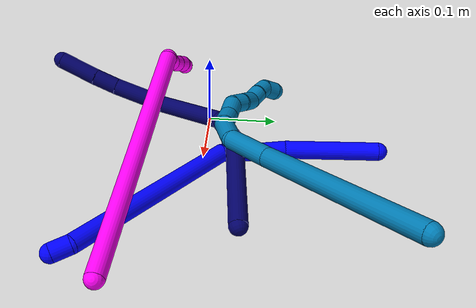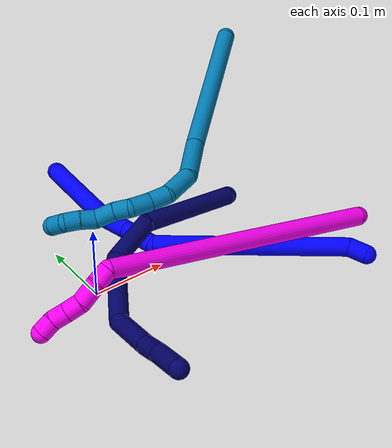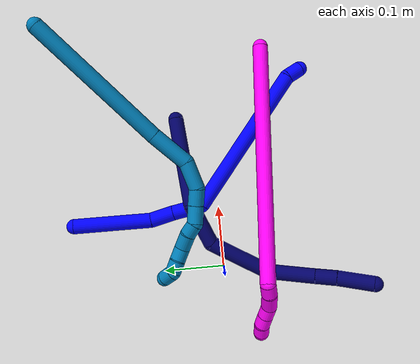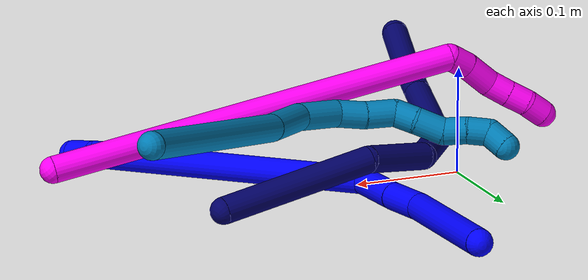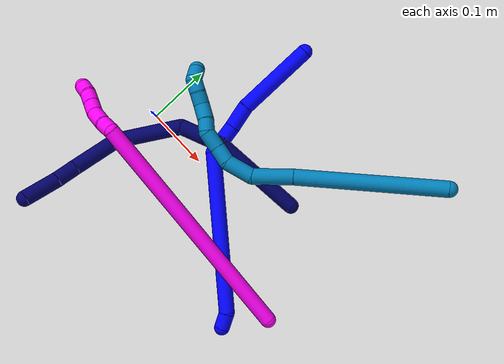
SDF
<sdf version="1.7">
 <world name="default">
  <model name="bin">
   <static>1</static>
   <link name="bottom">
    <collision name="collision-bottom">
     <pose>0 0 -0.01 0 -0 0</pose>
     <geometry><box><size>0.8 0.6 0.02</size></box></geometry>
     <surface>
      <friction><ode><mu>100</mu><mu2>100</mu2></ode></friction>
      <contact><collide_bitmask>65535</collide_bitmask></contact>
     </surface>
    </collision>
   </link>
   <link name="west_wall">
    <collision name="collision-west_wall">
     <pose>-0.41 0 0.1 0 -0 0</pose>
     <geometry><box><size>0.02 0.6 0.2</size></box></geometry>
     <surface>
      <friction><ode><mu>100</mu><mu2>100</mu2></ode></friction>
      <contact><collide_bitmask>65535</collide_bitmask></contact>
     </surface>
    </collision>
   </link>
   <link name="east_wall">
    <collision name="collision-east_wall">
     <pose>0.41 0 0.1 0 -0 0</pose>
     <geometry><box><size>0.02 0.6 0.2</size></box></geometry>
     <surface>
      <friction><ode><mu>100</mu><mu2>100</mu2></ode></friction>
      <contact><collide_bitmask>65535</collide_bitmask></contact>
     </surface>
    </collision>
   </link>
   <link name="south_wall">
    <collision name="collision-south_wall">
     <pose>0 -0.31 0.1 0 -0 0</pose>
     <geometry><box><size>0.8 0.02 0.2</size></box></geometry>
     <surface>
      <friction><ode><mu>100</mu><mu2>100</mu2></ode></friction>
      <contact><collide_bitmask>65535</collide_bitmask></contact>
     </surface>
    </collision>
   </link>
   <link name="north_wall">
    <collision name="collision-north_wall">
     <pose>0 0.31 0.1 0 -0 0</pose>
     <geometry><box><size>0.8 0.02 0.2</size></box></geometry>
     <surface>
      <friction><ode><mu>100</mu><mu2>100</mu2></ode></friction>
      <contact><collide_bitmask>65535</collide_bitmask></contact>
     </surface>
    </collision>
   </link>
  </model>
  <model name="1">
   <static>0</static>
   <link name="1">
    <collision name="collision-cylinder-e_1_1_4">
     <pose>-0.000139 -0.010173 -0.063301 2.98225 -0.002169 -0.027163</pose>
     <geometry><cylinder><radius>0.0125</radius><length>0.128226</length></cylinder></geometry>
     <surface>
      <friction><ode><mu>1.16</mu><mu2>1.16</mu2><slip1>0</slip1><slip2>0</slip2></ode></friction>
      <contact><ode><kp>1e+06</kp><kd>1</kd><max_vel>0</max_vel><min_depth>0.001</min_depth></ode></contact>
     </surface>
    </collision>
    <visual name="visual-cylinder-e_1_1_4">
     <pose>-0.000139 -0.010173 -0.063301 2.98225 -0.002169 -0.027163</pose>
     <geometry><cylinder><radius>0.0125</radius><length>0.128226</length></cylinder></geometry>
     <material><ambient>0 0 1 1</ambient></material>
    </visual>
    <collision name="collision-cylinder-e_2_4_5">
     <pose>-0.000852 -0.027991 -0.144532 2.73855 -0.029453 -0.143932</pose>
     <geometry><cylinder><radius>0.0125</radius><length>0.039002</length></cylinder></geometry>
     <surface>
      <friction><ode><mu>1.16</mu><mu2>1.16</mu2><slip1>0</slip1><slip2>0</slip2></ode></friction>
      <contact><ode><kp>1e+06</kp><kd>1</kd><max_vel>0</max_vel><min_depth>0.001</min_depth></ode></contact>
     </surface>
    </collision>
    <visual name="visual-cylinder-e_2_4_5">
     <pose>-0.000852 -0.027991 -0.144532 2.73855 -0.029453 -0.143932</pose>
     <geometry><cylinder><radius>0.0125</radius><length>0.039002</length></cylinder></geometry>
     <material><ambient>0 0 1 1</ambient></material>
    </visual>
    <collision name="collision-cylinder-e_3_5_6">
     <pose>-0.00309 -0.044097 -0.185906 2.79524 -0.066637 -0.376564</pose>
     <geometry><cylinder><radius>0.0125</radius><length>0.049957</length></cylinder></geometry>
     <surface>
      <friction><ode><mu>1.16</mu><mu2>1.16</mu2><slip1>0</slip1><slip2>0</slip2></ode></friction>
      <contact><ode><kp>1e+06</kp><kd>1</kd><max_vel>0</max_vel><min_depth>0.001</min_depth></ode></contact>
     </surface>
    </collision>
    <visual name="visual-cylinder-e_3_5_6">
     <pose>-0.00309 -0.044097 -0.185906 2.79524 -0.066637 -0.376564</pose>
     <geometry><cylinder><radius>0.0125</radius><length>0.049957</length></cylinder></geometry>
     <material><ambient>0 0 1 1</ambient></material>
    </visual>
    <collision name="collision-cylinder-e_4_6_7">
     <pose>-0.002627 -0.165091 -0.271459 2.07512 0.01654 0.02802</pose>
     <geometry><cylinder><radius>0.0125</radius><length>0.257105</length></cylinder></geometry>
     <surface>
      <friction><ode><mu>1.16</mu><mu2>1.16</mu2><slip1>0</slip1><slip2>0</slip2></ode></friction>
      <contact><ode><kp>1e+06</kp><kd>1</kd><max_vel>0</max_vel><min_depth>0.001</min_depth></ode></contact>
     </surface>
    </collision>
    <visual name="visual-cylinder-e_4_6_7">
     <pose>-0.002627 -0.165091 -0.271459 2.07512 0.01654 0.02802</pose>
     <geometry><cylinder><radius>0.0125</radius><length>0.257105</length></cylinder></geometry>
     <material><ambient>0 0 1 1</ambient></material>
    </visual>
    <collision name="collision-cylinder-e_5_7_2">
     <pose>0.001659 -0.285325 -0.343632 2.48835 0.16885 0.489609</pose>
     <geometry><cylinder><radius>0.0125</radius><length>0.025709</length></cylinder></geometry>
     <surface>
      <friction><ode><mu>1.16</mu><mu2>1.16</mu2><slip1>0</slip1><slip2>0</slip2></ode></friction>
      <contact><ode><kp>1e+06</kp><kd>1</kd><max_vel>0</max_vel><min_depth>0.001</min_depth></ode></contact>
     </surface>
    </collision>
    <visual name="visual-cylinder-e_5_7_2">
     <pose>0.001659 -0.285325 -0.343632 2.48835 0.16885 0.489609</pose>
     <geometry><cylinder><radius>0.0125</radius><length>0.025709</length></cylinder></geometry>
     <material><ambient>0 0 1 1</ambient></material>
    </visual>
    <collision name="collision-sphere-2">
     <pose>0.003819 -0.293026 -0.353694 0 -0 0</pose>
     <geometry><sphere><radius>0.0125</radius></sphere></geometry>
     <surface>
      <friction><ode><mu>1.16</mu><mu2>1.16</mu2><slip1>0</slip1><slip2>0</slip2></ode></friction>
      <contact><ode><kp>1e+06</kp><kd>1</kd><max_vel>0</max_vel><min_depth>0.001</min_depth></ode></contact>
     </surface>
    </collision>
    <visual name="visual-sphere-2">
     <pose>0.003819 -0.293026 -0.353694 0 -0 0</pose>
     <geometry><sphere><radius>0.0125</radius></sphere></geometry>
     <material><ambient>0 0 1 1</ambient></material>
    </visual>
    <collision name="collision-sphere-7">
     <pose>-0.000501 -0.277624 -0.333569 0 -0 0</pose>
     <geometry><sphere><radius>0.0125</radius></sphere></geometry>
     <surface>
      <friction><ode><mu>1.16</mu><mu2>1.16</mu2><slip1>0</slip1><slip2>0</slip2></ode></friction>
      <contact><ode><kp>1e+06</kp><kd>1</kd><max_vel>0</max_vel><min_depth>0.001</min_depth></ode></contact>
     </surface>
    </collision>
    <visual name="visual-sphere-7">
     <pose>-0.000501 -0.277624 -0.333569 0 -0 0</pose>
     <geometry><sphere><radius>0.0125</radius></sphere></geometry>
     <material><ambient>0 0 1 1</ambient></material>
    </visual>
    <collision name="collision-sphere-6">
     <pose>-0.004753 -0.052558 -0.20935 0 -0 0</pose>
     <geometry><sphere><radius>0.0125</radius></sphere></geometry>
     <surface>
      <friction><ode><mu>1.16</mu><mu2>1.16</mu2><slip1>0</slip1><slip2>0</slip2></ode></friction>
      <contact><ode><kp>1e+06</kp><kd>1</kd><max_vel>0</max_vel><min_depth>0.001</min_depth></ode></contact>
     </surface>
    </collision>
    <visual name="visual-sphere-6">
     <pose>-0.004753 -0.052558 -0.20935 0 -0 0</pose>
     <geometry><sphere><radius>0.0125</radius></sphere></geometry>
     <material><ambient>0 0 1 1</ambient></material>
    </visual>
    <collision name="collision-sphere-5">
     <pose>-0.001427 -0.035636 -0.162463 0 -0 0</pose>
     <geometry><sphere><radius>0.0125</radius></sphere></geometry>
     <surface>
      <friction><ode><mu>1.16</mu><mu2>1.16</mu2><slip1>0</slip1><slip2>0</slip2></ode></friction>
      <contact><ode><kp>1e+06</kp><kd>1</kd><max_vel>0</max_vel><min_depth>0.001</min_depth></ode></contact>
     </surface>
    </collision>
    <visual name="visual-sphere-5">
     <pose>-0.001427 -0.035636 -0.162463 0 -0 0</pose>
     <geometry><sphere><radius>0.0125</radius></sphere></geometry>
     <material><ambient>0 0 1 1</ambient></material>
    </visual>
    <collision name="collision-sphere-1">
     <geometry><sphere><radius>0.0125</radius></sphere></geometry>
     <surface>
      <friction><ode><mu>1.16</mu><mu2>1.16</mu2><slip1>0</slip1><slip2>0</slip2></ode></friction>
      <contact><ode><kp>1e+06</kp><kd>1</kd><max_vel>0</max_vel><min_depth>0.001</min_depth></ode></contact>
     </surface>
    </collision>
    <visual name="visual-sphere-1">
     <geometry><sphere><radius>0.0125</radius></sphere></geometry>
     <material><ambient>0 0 1 1</ambient></material>
    </visual>
    <collision name="collision-sphere-4">
     <pose>-0.000278 -0.020346 -0.126602 0 -0 0</pose>
     <geometry><sphere><radius>0.0125</radius></sphere></geometry>
     <surface>
      <friction><ode><mu>1.16</mu><mu2>1.16</mu2><slip1>0</slip1><slip2>0</slip2></ode></friction>
      <contact><ode><kp>1e+06</kp><kd>1</kd><max_vel>0</max_vel><min_depth>0.001</min_depth></ode></contact>
     </surface>
    </collision>
    <visual name="visual-sphere-4">
     <pose>-0.000278 -0.020346 -0.126602 0 -0 0</pose>
     <geometry><sphere><radius>0.0125</radius></sphere></geometry>
     <material><ambient>0 0 1 1</ambient></material>
    </visual>
    <inertial>
     <pose>-0.001676 -0.10876 -0.203339 0 -0 0</pose>
     <mass>0.5</mass>
     <inertia>
      <ixx>0.001657</ixx>
      <ixy>0</ixy>
      <ixz>0</ixz>
      <iyy>-0.000877</iyy>
      <iyz>0</iyz>
      <izz>0.001235</izz>
     </inertia>
    </inertial>
   </link>
   <pose>0.090035 0.242398 0.017252 -0.829258 1.48507 0.571272</pose>
  </model>
  <model name="7">
   <static>0</static>
   <link name="7">
    <collision name="collision-cylinder-e_1_1_4">
     <pose>0.010843 -0.022826 -0.069794 2.82551 0.146597 0.863517</pose>
     <geometry><cylinder><radius>0.0125</radius><length>0.148455</length></cylinder></geometry>
     <surface>
      <friction><ode><mu>1.16</mu><mu2>1.16</mu2><slip1>0</slip1><slip2>0</slip2></ode></friction>
      <contact><ode><kp>1e+06</kp><kd>1</kd><max_vel>0</max_vel><min_depth>0.001</min_depth></ode></contact>
     </surface>
    </collision>
    <visual name="visual-cylinder-e_1_1_4">
     <pose>0.010843 -0.022826 -0.069794 2.82551 0.146597 0.863517</pose>
     <geometry><cylinder><radius>0.0125</radius><length>0.148455</length></cylinder></geometry>
     <material><ambient>0.003922 0 0.403922 1</ambient></material>
    </visual>
    <collision name="collision-cylinder-e_2_4_5">
     <pose>0.012392 -0.062289 -0.169868 2.63917 -0.262762 -0.951007</pose>
     <geometry><cylinder><radius>0.0125</radius><length>0.071557</length></cylinder></geometry>
     <surface>
      <friction><ode><mu>1.16</mu><mu2>1.16</mu2><slip1>0</slip1><slip2>0</slip2></ode></friction>
      <contact><ode><kp>1e+06</kp><kd>1</kd><max_vel>0</max_vel><min_depth>0.001</min_depth></ode></contact>
     </surface>
    </collision>
    <visual name="visual-cylinder-e_2_4_5">
     <pose>0.012392 -0.062289 -0.169868 2.63917 -0.262762 -0.951007</pose>
     <geometry><cylinder><radius>0.0125</radius><length>0.071557</length></cylinder></geometry>
     <material><ambient>0.003922 0 0.403922 1</ambient></material>
    </visual>
    <collision name="collision-cylinder-e_3_5_6">
     <pose>-0.035527 -0.08369 -0.23737 3.01431 -0.799837 -2.84231</pose>
     <geometry><cylinder><radius>0.0125</radius><length>0.107704</length></cylinder></geometry>
     <surface>
      <friction><ode><mu>1.16</mu><mu2>1.16</mu2><slip1>0</slip1><slip2>0</slip2></ode></friction>
      <contact><ode><kp>1e+06</kp><kd>1</kd><max_vel>0</max_vel><min_depth>0.001</min_depth></ode></contact>
     </surface>
    </collision>
    <visual name="visual-cylinder-e_3_5_6">
     <pose>-0.035527 -0.08369 -0.23737 3.01431 -0.799837 -2.84231</pose>
     <geometry><cylinder><radius>0.0125</radius><length>0.107704</length></cylinder></geometry>
     <material><ambient>0.003922 0 0.403922 1</ambient></material>
    </visual>
    <collision name="collision-cylinder-e_4_6_7">
     <pose>-0.101497 -0.070099 -0.296443 -2.44293 -0.764068 1.66863</pose>
     <geometry><cylinder><radius>0.0125</radius><length>0.079048</length></cylinder></geometry>
     <surface>
      <friction><ode><mu>1.16</mu><mu2>1.16</mu2><slip1>0</slip1><slip2>0</slip2></ode></friction>
      <contact><ode><kp>1e+06</kp><kd>1</kd><max_vel>0</max_vel><min_depth>0.001</min_depth></ode></contact>
     </surface>
    </collision>
    <visual name="visual-cylinder-e_4_6_7">
     <pose>-0.101497 -0.070099 -0.296443 -2.44293 -0.764068 1.66863</pose>
     <geometry><cylinder><radius>0.0125</radius><length>0.079048</length></cylinder></geometry>
     <material><ambient>0.003922 0 0.403922 1</ambient></material>
    </visual>
    <collision name="collision-cylinder-e_5_7_8">
     <pose>-0.140068 -0.042146 -0.328045 -2.36411 -0.687089 1.43585</pose>
     <geometry><cylinder><radius>0.0125</radius><length>0.035397</length></cylinder></geometry>
     <surface>
      <friction><ode><mu>1.16</mu><mu2>1.16</mu2><slip1>0</slip1><slip2>0</slip2></ode></friction>
      <contact><ode><kp>1e+06</kp><kd>1</kd><max_vel>0</max_vel><min_depth>0.001</min_depth></ode></contact>
     </surface>
    </collision>
    <visual name="visual-cylinder-e_5_7_8">
     <pose>-0.140068 -0.042146 -0.328045 -2.36411 -0.687089 1.43585</pose>
     <geometry><cylinder><radius>0.0125</radius><length>0.035397</length></cylinder></geometry>
     <material><ambient>0.003922 0 0.403922 1</ambient></material>
    </visual>
    <collision name="collision-cylinder-e_6_8_2">
     <pose>-0.168942 -0.017737 -0.355276 -2.43868 -0.656381 1.4968</pose>
     <geometry><cylinder><radius>0.0125</radius><length>0.05784</length></cylinder></geometry>
     <surface>
      <friction><ode><mu>1.16</mu><mu2>1.16</mu2><slip1>0</slip1><slip2>0</slip2></ode></friction>
      <contact><ode><kp>1e+06</kp><kd>1</kd><max_vel>0</max_vel><min_depth>0.001</min_depth></ode></contact>
     </surface>
    </collision>
    <visual name="visual-cylinder-e_6_8_2">
     <pose>-0.168942 -0.017737 -0.355276 -2.43868 -0.656381 1.4968</pose>
     <geometry><cylinder><radius>0.0125</radius><length>0.05784</length></cylinder></geometry>
     <material><ambient>0.003922 0 0.403922 1</ambient></material>
    </visual>
    <collision name="collision-sphere-2">
     <pose>-0.186591 -0.002927 -0.372756 0 -0 0</pose>
     <geometry><sphere><radius>0.0125</radius></sphere></geometry>
     <surface>
      <friction><ode><mu>1.16</mu><mu2>1.16</mu2><slip1>0</slip1><slip2>0</slip2></ode></friction>
      <contact><ode><kp>1e+06</kp><kd>1</kd><max_vel>0</max_vel><min_depth>0.001</min_depth></ode></contact>
     </surface>
    </collision>
    <visual name="visual-sphere-2">
     <pose>-0.186591 -0.002927 -0.372756 0 -0 0</pose>
     <geometry><sphere><radius>0.0125</radius></sphere></geometry>
     <material><ambient>0.003922 0 0.403922 1</ambient></material>
    </visual>
    <collision name="collision-sphere-4">
     <pose>0.021685 -0.045652 -0.139587 0 -0 0</pose>
     <geometry><sphere><radius>0.0125</radius></sphere></geometry>
     <surface>
      <friction><ode><mu>1.16</mu><mu2>1.16</mu2><slip1>0</slip1><slip2>0</slip2></ode></friction>
      <contact><ode><kp>1e+06</kp><kd>1</kd><max_vel>0</max_vel><min_depth>0.001</min_depth></ode></contact>
     </surface>
    </collision>
    <visual name="visual-sphere-4">
     <pose>0.021685 -0.045652 -0.139587 0 -0 0</pose>
     <geometry><sphere><radius>0.0125</radius></sphere></geometry>
     <material><ambient>0.003922 0 0.403922 1</ambient></material>
    </visual>
    <collision name="collision-sphere-1">
     <geometry><sphere><radius>0.0125</radius></sphere></geometry>
     <surface>
      <friction><ode><mu>1.16</mu><mu2>1.16</mu2><slip1>0</slip1><slip2>0</slip2></ode></friction>
      <contact><ode><kp>1e+06</kp><kd>1</kd><max_vel>0</max_vel><min_depth>0.001</min_depth></ode></contact>
     </surface>
    </collision>
    <visual name="visual-sphere-1">
     <geometry><sphere><radius>0.0125</radius></sphere></geometry>
     <material><ambient>0.003922 0 0.403922 1</ambient></material>
    </visual>
    <collision name="collision-sphere-8">
     <pose>-0.151294 -0.032547 -0.337797 0 -0 0</pose>
     <geometry><sphere><radius>0.0125</radius></sphere></geometry>
     <surface>
      <friction><ode><mu>1.16</mu><mu2>1.16</mu2><slip1>0</slip1><slip2>0</slip2></ode></friction>
      <contact><ode><kp>1e+06</kp><kd>1</kd><max_vel>0</max_vel><min_depth>0.001</min_depth></ode></contact>
     </surface>
    </collision>
    <visual name="visual-sphere-8">
     <pose>-0.151294 -0.032547 -0.337797 0 -0 0</pose>
     <geometry><sphere><radius>0.0125</radius></sphere></geometry>
     <material><ambient>0.003922 0 0.403922 1</ambient></material>
    </visual>
    <collision name="collision-sphere-5">
     <pose>0.003098 -0.078927 -0.200148 0 -0 0</pose>
     <geometry><sphere><radius>0.0125</radius></sphere></geometry>
     <surface>
      <friction><ode><mu>1.16</mu><mu2>1.16</mu2><slip1>0</slip1><slip2>0</slip2></ode></friction>
      <contact><ode><kp>1e+06</kp><kd>1</kd><max_vel>0</max_vel><min_depth>0.001</min_depth></ode></contact>
     </surface>
    </collision>
    <visual name="visual-sphere-5">
     <pose>0.003098 -0.078927 -0.200148 0 -0 0</pose>
     <geometry><sphere><radius>0.0125</radius></sphere></geometry>
     <material><ambient>0.003922 0 0.403922 1</ambient></material>
    </visual>
    <collision name="collision-sphere-6">
     <pose>-0.074151 -0.088454 -0.274591 0 -0 0</pose>
     <geometry><sphere><radius>0.0125</radius></sphere></geometry>
     <surface>
      <friction><ode><mu>1.16</mu><mu2>1.16</mu2><slip1>0</slip1><slip2>0</slip2></ode></friction>
      <contact><ode><kp>1e+06</kp><kd>1</kd><max_vel>0</max_vel><min_depth>0.001</min_depth></ode></contact>
     </surface>
    </collision>
    <visual name="visual-sphere-6">
     <pose>-0.074151 -0.088454 -0.274591 0 -0 0</pose>
     <geometry><sphere><radius>0.0125</radius></sphere></geometry>
     <material><ambient>0.003922 0 0.403922 1</ambient></material>
    </visual>
    <collision name="collision-sphere-7">
     <pose>-0.128842 -0.051744 -0.318294 0 -0 0</pose>
     <geometry><sphere><radius>0.0125</radius></sphere></geometry>
     <surface>
      <friction><ode><mu>1.16</mu><mu2>1.16</mu2><slip1>0</slip1><slip2>0</slip2></ode></friction>
      <contact><ode><kp>1e+06</kp><kd>1</kd><max_vel>0</max_vel><min_depth>0.001</min_depth></ode></contact>
     </surface>
    </collision>
    <visual name="visual-sphere-7">
     <pose>-0.128842 -0.051744 -0.318294 0 -0 0</pose>
     <geometry><sphere><radius>0.0125</radius></sphere></geometry>
     <material><ambient>0.003922 0 0.403922 1</ambient></material>
    </visual>
    <inertial>
     <pose>-0.048165 -0.049837 -0.207352 0 -0 0</pose>
     <mass>0.5</mass>
     <inertia>
      <ixx>0.000321</ixx>
      <ixy>0</ixy>
      <ixz>0</ixz>
      <iyy>0.000171</iyy>
      <iyz>0</iyz>
      <izz>0.00014</izz>
     </inertia>
    </inertial>
   </link>
   <pose>0.253467 0.058115 0.011445 2.01457 -0.461047 1.74259</pose>
  </model>
  <model name="9">
   <static>0</static>
   <link name="9">
    <collision name="collision-cylinder-e_1_1_4">
     <pose>0.014753 -0.004952 -0.113446 3.09797 0.129196 2.49109</pose>
     <geometry><cylinder><radius>0.0125</radius><length>0.229017</length></cylinder></geometry>
     <surface>
      <friction><ode><mu>1.16</mu><mu2>1.16</mu2><slip1>0</slip1><slip2>0</slip2></ode></friction>
      <contact><ode><kp>1e+06</kp><kd>1</kd><max_vel>0</max_vel><min_depth>0.001</min_depth></ode></contact>
     </surface>
    </collision>
    <visual name="visual-cylinder-e_1_1_4">
     <pose>0.014753 -0.004952 -0.113446 3.09797 0.129196 2.49109</pose>
     <geometry><cylinder><radius>0.0125</radius><length>0.229017</length></cylinder></geometry>
     <material><ambient>0 0.490196 0.709804 1</ambient></material>
    </visual>
    <collision name="collision-cylinder-e_2_4_5">
     <pose>0.034099 -0.014492 -0.258007 2.9952 0.145007 1.56122</pose>
     <geometry><cylinder><radius>0.0125</radius><length>0.06357</length></cylinder></geometry>
     <surface>
      <friction><ode><mu>1.16</mu><mu2>1.16</mu2><slip1>0</slip1><slip2>0</slip2></ode></friction>
      <contact><ode><kp>1e+06</kp><kd>1</kd><max_vel>0</max_vel><min_depth>0.001</min_depth></ode></contact>
     </surface>
    </collision>
    <visual name="visual-cylinder-e_2_4_5">
     <pose>0.034099 -0.014492 -0.258007 2.9952 0.145007 1.56122</pose>
     <geometry><cylinder><radius>0.0125</radius><length>0.06357</length></cylinder></geometry>
     <material><ambient>0 0.490196 0.709804 1</ambient></material>
    </visual>
    <collision name="collision-cylinder-e_3_5_6">
     <pose>0.032472 -0.016895 -0.309894 -3.03681 -0.289444 2.45079</pose>
     <geometry><cylinder><radius>0.0125</radius><length>0.043585</length></cylinder></geometry>
     <surface>
      <friction><ode><mu>1.16</mu><mu2>1.16</mu2><slip1>0</slip1><slip2>0</slip2></ode></friction>
      <contact><ode><kp>1e+06</kp><kd>1</kd><max_vel>0</max_vel><min_depth>0.001</min_depth></ode></contact>
     </surface>
    </collision>
    <visual name="visual-cylinder-e_3_5_6">
     <pose>0.032472 -0.016895 -0.309894 -3.03681 -0.289444 2.45079</pose>
     <geometry><cylinder><radius>0.0125</radius><length>0.043585</length></cylinder></geometry>
     <material><ambient>0 0.490196 0.709804 1</ambient></material>
    </visual>
    <collision name="collision-cylinder-e_4_6_7">
     <pose>0.018374 -0.01001 -0.340473 -2.69466 -0.626872 1.91858</pose>
     <geometry><cylinder><radius>0.0125</radius><length>0.026858</length></cylinder></geometry>
     <surface>
      <friction><ode><mu>1.16</mu><mu2>1.16</mu2><slip1>0</slip1><slip2>0</slip2></ode></friction>
      <contact><ode><kp>1e+06</kp><kd>1</kd><max_vel>0</max_vel><min_depth>0.001</min_depth></ode></contact>
     </surface>
    </collision>
    <visual name="visual-cylinder-e_4_6_7">
     <pose>0.018374 -0.01001 -0.340473 -2.69466 -0.626872 1.91858</pose>
     <geometry><cylinder><radius>0.0125</radius><length>0.026858</length></cylinder></geometry>
     <material><ambient>0 0.490196 0.709804 1</ambient></material>
    </visual>
    <collision name="collision-cylinder-e_5_7_8">
     <pose>0.001448 -0.002252 -0.360624 -2.85416 -0.698029 2.38461</pose>
     <geometry><cylinder><radius>0.0125</radius><length>0.028157</length></cylinder></geometry>
     <surface>
      <friction><ode><mu>1.16</mu><mu2>1.16</mu2><slip1>0</slip1><slip2>0</slip2></ode></friction>
      <contact><ode><kp>1e+06</kp><kd>1</kd><max_vel>0</max_vel><min_depth>0.001</min_depth></ode></contact>
     </surface>
    </collision>
    <visual name="visual-cylinder-e_5_7_8">
     <pose>0.001448 -0.002252 -0.360624 -2.85416 -0.698029 2.38461</pose>
     <geometry><cylinder><radius>0.0125</radius><length>0.028157</length></cylinder></geometry>
     <material><ambient>0 0.490196 0.709804 1</ambient></material>
    </visual>
    <collision name="collision-cylinder-e_6_8_9">
     <pose>-0.014667 0.007624 -0.37427 -2.02198 -0.750601 1.12247</pose>
     <geometry><cylinder><radius>0.0125</radius><length>0.020722</length></cylinder></geometry>
     <surface>
      <friction><ode><mu>1.16</mu><mu2>1.16</mu2><slip1>0</slip1><slip2>0</slip2></ode></friction>
      <contact><ode><kp>1e+06</kp><kd>1</kd><max_vel>0</max_vel><min_depth>0.001</min_depth></ode></contact>
     </surface>
    </collision>
    <visual name="visual-cylinder-e_6_8_9">
     <pose>-0.014667 0.007624 -0.37427 -2.02198 -0.750601 1.12247</pose>
     <geometry><cylinder><radius>0.0125</radius><length>0.020722</length></cylinder></geometry>
     <material><ambient>0 0.490196 0.709804 1</ambient></material>
    </visual>
    <collision name="collision-cylinder-e_7_9_10">
     <pose>-0.029198 0.023151 -0.384147 -2.21738 -0.599944 1.11143</pose>
     <geometry><cylinder><radius>0.0125</radius><length>0.026437</length></cylinder></geometry>
     <surface>
      <friction><ode><mu>1.16</mu><mu2>1.16</mu2><slip1>0</slip1><slip2>0</slip2></ode></friction>
      <contact><ode><kp>1e+06</kp><kd>1</kd><max_vel>0</max_vel><min_depth>0.001</min_depth></ode></contact>
     </surface>
    </collision>
    <visual name="visual-cylinder-e_7_9_10">
     <pose>-0.029198 0.023151 -0.384147 -2.21738 -0.599944 1.11143</pose>
     <geometry><cylinder><radius>0.0125</radius><length>0.026437</length></cylinder></geometry>
     <material><ambient>0 0.490196 0.709804 1</ambient></material>
    </visual>
    <collision name="collision-cylinder-e_8_10_11">
     <pose>-0.04536 0.035059 -0.395677 -2.56829 -0.974849 2.12659</pose>
     <geometry><cylinder><radius>0.0125</radius><length>0.021024</length></cylinder></geometry>
     <surface>
      <friction><ode><mu>1.16</mu><mu2>1.16</mu2><slip1>0</slip1><slip2>0</slip2></ode></friction>
      <contact><ode><kp>1e+06</kp><kd>1</kd><max_vel>0</max_vel><min_depth>0.001</min_depth></ode></contact>
     </surface>
    </collision>
    <visual name="visual-cylinder-e_8_10_11">
     <pose>-0.04536 0.035059 -0.395677 -2.56829 -0.974849 2.12659</pose>
     <geometry><cylinder><radius>0.0125</radius><length>0.021024</length></cylinder></geometry>
     <material><ambient>0 0.490196 0.709804 1</ambient></material>
    </visual>
    <collision name="collision-cylinder-e_9_11_12">
     <pose>-0.06162 0.042651 -0.40581 -2.43798 -0.839096 1.7644</pose>
     <geometry><cylinder><radius>0.0125</radius><length>0.020321</length></cylinder></geometry>
     <surface>
      <friction><ode><mu>1.16</mu><mu2>1.16</mu2><slip1>0</slip1><slip2>0</slip2></ode></friction>
      <contact><ode><kp>1e+06</kp><kd>1</kd><max_vel>0</max_vel><min_depth>0.001</min_depth></ode></contact>
     </surface>
    </collision>
    <visual name="visual-cylinder-e_9_11_12">
     <pose>-0.06162 0.042651 -0.40581 -2.43798 -0.839096 1.7644</pose>
     <geometry><cylinder><radius>0.0125</radius><length>0.020321</length></cylinder></geometry>
     <material><ambient>0 0.490196 0.709804 1</ambient></material>
    </visual>
    <collision name="collision-cylinder-e_10_12_2">
     <pose>-0.074309 0.055788 -0.411575 -1.638 -0.529499 0.564468</pose>
     <geometry><cylinder><radius>0.0125</radius><length>0.020309</length></cylinder></geometry>
     <surface>
      <friction><ode><mu>1.16</mu><mu2>1.16</mu2><slip1>0</slip1><slip2>0</slip2></ode></friction>
      <contact><ode><kp>1e+06</kp><kd>1</kd><max_vel>0</max_vel><min_depth>0.001</min_depth></ode></contact>
     </surface>
    </collision>
    <visual name="visual-cylinder-e_10_12_2">
     <pose>-0.074309 0.055788 -0.411575 -1.638 -0.529499 0.564468</pose>
     <geometry><cylinder><radius>0.0125</radius><length>0.020309</length></cylinder></geometry>
     <material><ambient>0 0.490196 0.709804 1</ambient></material>
    </visual>
    <collision name="collision-sphere-2">
     <pose>-0.079438 0.064532 -0.412164 0 -0 0</pose>
     <geometry><sphere><radius>0.0125</radius></sphere></geometry>
     <surface>
      <friction><ode><mu>1.16</mu><mu2>1.16</mu2><slip1>0</slip1><slip2>0</slip2></ode></friction>
      <contact><ode><kp>1e+06</kp><kd>1</kd><max_vel>0</max_vel><min_depth>0.001</min_depth></ode></contact>
     </surface>
    </collision>
    <visual name="visual-sphere-2">
     <pose>-0.079438 0.064532 -0.412164 0 -0 0</pose>
     <geometry><sphere><radius>0.0125</radius></sphere></geometry>
     <material><ambient>0 0.490196 0.709804 1</ambient></material>
    </visual>
    <collision name="collision-sphere-12">
     <pose>-0.06918 0.047044 -0.410987 0 -0 0</pose>
     <geometry><sphere><radius>0.0125</radius></sphere></geometry>
     <surface>
      <friction><ode><mu>1.16</mu><mu2>1.16</mu2><slip1>0</slip1><slip2>0</slip2></ode></friction>
      <contact><ode><kp>1e+06</kp><kd>1</kd><max_vel>0</max_vel><min_depth>0.001</min_depth></ode></contact>
     </surface>
    </collision>
    <visual name="visual-sphere-12">
     <pose>-0.06918 0.047044 -0.410987 0 -0 0</pose>
     <geometry><sphere><radius>0.0125</radius></sphere></geometry>
     <material><ambient>0 0.490196 0.709804 1</ambient></material>
    </visual>
    <collision name="collision-sphere-11">
     <pose>-0.05406 0.038259 -0.400634 0 -0 0</pose>
     <geometry><sphere><radius>0.0125</radius></sphere></geometry>
     <surface>
      <friction><ode><mu>1.16</mu><mu2>1.16</mu2><slip1>0</slip1><slip2>0</slip2></ode></friction>
      <contact><ode><kp>1e+06</kp><kd>1</kd><max_vel>0</max_vel><min_depth>0.001</min_depth></ode></contact>
     </surface>
    </collision>
    <visual name="visual-sphere-11">
     <pose>-0.05406 0.038259 -0.400634 0 -0 0</pose>
     <geometry><sphere><radius>0.0125</radius></sphere></geometry>
     <material><ambient>0 0.490196 0.709804 1</ambient></material>
    </visual>
    <collision name="collision-sphere-10">
     <pose>-0.036661 0.031859 -0.39072 0 -0 0</pose>
     <geometry><sphere><radius>0.0125</radius></sphere></geometry>
     <surface>
      <friction><ode><mu>1.16</mu><mu2>1.16</mu2><slip1>0</slip1><slip2>0</slip2></ode></friction>
      <contact><ode><kp>1e+06</kp><kd>1</kd><max_vel>0</max_vel><min_depth>0.001</min_depth></ode></contact>
     </surface>
    </collision>
    <visual name="visual-sphere-10">
     <pose>-0.036661 0.031859 -0.39072 0 -0 0</pose>
     <geometry><sphere><radius>0.0125</radius></sphere></geometry>
     <material><ambient>0 0.490196 0.709804 1</ambient></material>
    </visual>
    <collision name="collision-sphere-9">
     <pose>-0.021735 0.014443 -0.377574 0 -0 0</pose>
     <geometry><sphere><radius>0.0125</radius></sphere></geometry>
     <surface>
      <friction><ode><mu>1.16</mu><mu2>1.16</mu2><slip1>0</slip1><slip2>0</slip2></ode></friction>
      <contact><ode><kp>1e+06</kp><kd>1</kd><max_vel>0</max_vel><min_depth>0.001</min_depth></ode></contact>
     </surface>
    </collision>
    <visual name="visual-sphere-9">
     <pose>-0.021735 0.014443 -0.377574 0 -0 0</pose>
     <geometry><sphere><radius>0.0125</radius></sphere></geometry>
     <material><ambient>0 0.490196 0.709804 1</ambient></material>
    </visual>
    <collision name="collision-sphere-4">
     <pose>0.029506 -0.009904 -0.226892 0 -0 0</pose>
     <geometry><sphere><radius>0.0125</radius></sphere></geometry>
     <surface>
      <friction><ode><mu>1.16</mu><mu2>1.16</mu2><slip1>0</slip1><slip2>0</slip2></ode></friction>
      <contact><ode><kp>1e+06</kp><kd>1</kd><max_vel>0</max_vel><min_depth>0.001</min_depth></ode></contact>
     </surface>
    </collision>
    <visual name="visual-sphere-4">
     <pose>0.029506 -0.009904 -0.226892 0 -0 0</pose>
     <geometry><sphere><radius>0.0125</radius></sphere></geometry>
     <material><ambient>0 0.490196 0.709804 1</ambient></material>
    </visual>
    <collision name="collision-sphere-1">
     <geometry><sphere><radius>0.0125</radius></sphere></geometry>
     <surface>
      <friction><ode><mu>1.16</mu><mu2>1.16</mu2><slip1>0</slip1><slip2>0</slip2></ode></friction>
      <contact><ode><kp>1e+06</kp><kd>1</kd><max_vel>0</max_vel><min_depth>0.001</min_depth></ode></contact>
     </surface>
    </collision>
    <visual name="visual-sphere-1">
     <geometry><sphere><radius>0.0125</radius></sphere></geometry>
     <material><ambient>0 0.490196 0.709804 1</ambient></material>
    </visual>
    <collision name="collision-sphere-8">
     <pose>-0.0076 0.000806 -0.370967 0 -0 0</pose>
     <geometry><sphere><radius>0.0125</radius></sphere></geometry>
     <surface>
      <friction><ode><mu>1.16</mu><mu2>1.16</mu2><slip1>0</slip1><slip2>0</slip2></ode></friction>
      <contact><ode><kp>1e+06</kp><kd>1</kd><max_vel>0</max_vel><min_depth>0.001</min_depth></ode></contact>
     </surface>
    </collision>
    <visual name="visual-sphere-8">
     <pose>-0.0076 0.000806 -0.370967 0 -0 0</pose>
     <geometry><sphere><radius>0.0125</radius></sphere></geometry>
     <material><ambient>0 0.490196 0.709804 1</ambient></material>
    </visual>
    <collision name="collision-sphere-5">
     <pose>0.038692 -0.01908 -0.289122 0 -0 0</pose>
     <geometry><sphere><radius>0.0125</radius></sphere></geometry>
     <surface>
      <friction><ode><mu>1.16</mu><mu2>1.16</mu2><slip1>0</slip1><slip2>0</slip2></ode></friction>
      <contact><ode><kp>1e+06</kp><kd>1</kd><max_vel>0</max_vel><min_depth>0.001</min_depth></ode></contact>
     </surface>
    </collision>
    <visual name="visual-sphere-5">
     <pose>0.038692 -0.01908 -0.289122 0 -0 0</pose>
     <geometry><sphere><radius>0.0125</radius></sphere></geometry>
     <material><ambient>0 0.490196 0.709804 1</ambient></material>
    </visual>
    <collision name="collision-sphere-6">
     <pose>0.026252 -0.014711 -0.330665 0 -0 0</pose>
     <geometry><sphere><radius>0.0125</radius></sphere></geometry>
     <surface>
      <friction><ode><mu>1.16</mu><mu2>1.16</mu2><slip1>0</slip1><slip2>0</slip2></ode></friction>
      <contact><ode><kp>1e+06</kp><kd>1</kd><max_vel>0</max_vel><min_depth>0.001</min_depth></ode></contact>
     </surface>
    </collision>
    <visual name="visual-sphere-6">
     <pose>0.026252 -0.014711 -0.330665 0 -0 0</pose>
     <geometry><sphere><radius>0.0125</radius></sphere></geometry>
     <material><ambient>0 0.490196 0.709804 1</ambient></material>
    </visual>
    <collision name="collision-sphere-7">
     <pose>0.010496 -0.00531 -0.350281 0 -0 0</pose>
     <geometry><sphere><radius>0.0125</radius></sphere></geometry>
     <surface>
      <friction><ode><mu>1.16</mu><mu2>1.16</mu2><slip1>0</slip1><slip2>0</slip2></ode></friction>
      <contact><ode><kp>1e+06</kp><kd>1</kd><max_vel>0</max_vel><min_depth>0.001</min_depth></ode></contact>
     </surface>
    </collision>
    <visual name="visual-sphere-7">
     <pose>0.010496 -0.00531 -0.350281 0 -0 0</pose>
     <geometry><sphere><radius>0.0125</radius></sphere></geometry>
     <material><ambient>0 0.490196 0.709804 1</ambient></material>
    </visual>
    <inertial>
     <pose>0.00541 0.000766 -0.236046 0 -0 0</pose>
     <mass>0.5</mass>
     <inertia>
      <ixx>-0.000166</ixx>
      <ixy>0</ixy>
      <ixz>0</ixz>
      <iyy>0.00147</iyy>
      <iyz>0</iyz>
      <izz>-0.000115</izz>
     </inertia>
    </inertial>
   </link>
   <pose>0.387562 0.238458 0.137708 -1.37143 0.522518 -0.875462</pose>
  </model>
  <model name="10">
   <static>0</static>
   <link name="10">
    <collision name="collision-cylinder-e_1_1_4">
     <pose>-0.156374 -0.019349 -0.113349 2.97252 -0.93674 -2.80969</pose>
     <geometry><cylinder><radius>0.0125</radius><length>0.388202</length></cylinder></geometry>
     <surface>
      <friction><ode><mu>1.16</mu><mu2>1.16</mu2><slip1>0</slip1><slip2>0</slip2></ode></friction>
      <contact><ode><kp>1e+06</kp><kd>1</kd><max_vel>0</max_vel><min_depth>0.001</min_depth></ode></contact>
     </surface>
    </collision>
    <visual name="visual-cylinder-e_1_1_4">
     <pose>-0.156374 -0.019349 -0.113349 2.97252 -0.93674 -2.80969</pose>
     <geometry><cylinder><radius>0.0125</radius><length>0.388202</length></cylinder></geometry>
     <material><ambient>1 0 0.964706 1</ambient></material>
    </visual>
    <collision name="collision-cylinder-e_2_4_5">
     <pose>-0.314818 -0.040571 -0.237047 2.96245 -0.194392 -1.65285</pose>
     <geometry><cylinder><radius>0.0125</radius><length>0.021435</length></cylinder></geometry>
     <surface>
      <friction><ode><mu>1.16</mu><mu2>1.16</mu2><slip1>0</slip1><slip2>0</slip2></ode></friction>
      <contact><ode><kp>1e+06</kp><kd>1</kd><max_vel>0</max_vel><min_depth>0.001</min_depth></ode></contact>
     </surface>
    </collision>
    <visual name="visual-cylinder-e_2_4_5">
     <pose>-0.314818 -0.040571 -0.237047 2.96245 -0.194392 -1.65285</pose>
     <geometry><cylinder><radius>0.0125</radius><length>0.021435</length></cylinder></geometry>
     <material><ambient>1 0 0.964706 1</ambient></material>
    </visual>
    <collision name="collision-cylinder-e_3_5_6">
     <pose>-0.317559 -0.043243 -0.262188 3.0877 -0.045236 -1.39644</pose>
     <geometry><cylinder><radius>0.0125</radius><length>0.029662</length></cylinder></geometry>
     <surface>
      <friction><ode><mu>1.16</mu><mu2>1.16</mu2><slip1>0</slip1><slip2>0</slip2></ode></friction>
      <contact><ode><kp>1e+06</kp><kd>1</kd><max_vel>0</max_vel><min_depth>0.001</min_depth></ode></contact>
     </surface>
    </collision>
    <visual name="visual-cylinder-e_3_5_6">
     <pose>-0.317559 -0.043243 -0.262188 3.0877 -0.045236 -1.39644</pose>
     <geometry><cylinder><radius>0.0125</radius><length>0.029662</length></cylinder></geometry>
     <material><ambient>1 0 0.964706 1</ambient></material>
    </visual>
    <collision name="collision-cylinder-e_4_6_7">
     <pose>-0.320747 -0.041826 -0.286733 -2.91825 -0.246602 1.67061</pose>
     <geometry><cylinder><radius>0.0125</radius><length>0.020621</length></cylinder></geometry>
     <surface>
      <friction><ode><mu>1.16</mu><mu2>1.16</mu2><slip1>0</slip1><slip2>0</slip2></ode></friction>
      <contact><ode><kp>1e+06</kp><kd>1</kd><max_vel>0</max_vel><min_depth>0.001</min_depth></ode></contact>
     </surface>
    </collision>
    <visual name="visual-cylinder-e_4_6_7">
     <pose>-0.320747 -0.041826 -0.286733 -2.91825 -0.246602 1.67061</pose>
     <geometry><cylinder><radius>0.0125</radius><length>0.020621</length></cylinder></geometry>
     <material><ambient>1 0 0.964706 1</ambient></material>
    </visual>
    <collision name="collision-cylinder-e_5_7_8">
     <pose>-0.326066 -0.03743 -0.305852 -2.91277 -0.283432 1.7855</pose>
     <geometry><cylinder><radius>0.0125</radius><length>0.020039</length></cylinder></geometry>
     <surface>
      <friction><ode><mu>1.16</mu><mu2>1.16</mu2><slip1>0</slip1><slip2>0</slip2></ode></friction>
      <contact><ode><kp>1e+06</kp><kd>1</kd><max_vel>0</max_vel><min_depth>0.001</min_depth></ode></contact>
     </surface>
    </collision>
    <visual name="visual-cylinder-e_5_7_8">
     <pose>-0.326066 -0.03743 -0.305852 -2.91277 -0.283432 1.7855</pose>
     <geometry><cylinder><radius>0.0125</radius><length>0.020039</length></cylinder></geometry>
     <material><ambient>1 0 0.964706 1</ambient></material>
    </visual>
    <collision name="collision-cylinder-e_6_8_2">
     <pose>-0.330047 -0.035325 -0.325171 3.13387 -0.118013 -3.01107</pose>
     <geometry><cylinder><radius>0.0125</radius><length>0.020041</length></cylinder></geometry>
     <surface>
      <friction><ode><mu>1.16</mu><mu2>1.16</mu2><slip1>0</slip1><slip2>0</slip2></ode></friction>
      <contact><ode><kp>1e+06</kp><kd>1</kd><max_vel>0</max_vel><min_depth>0.001</min_depth></ode></contact>
     </surface>
    </collision>
    <visual name="visual-cylinder-e_6_8_2">
     <pose>-0.330047 -0.035325 -0.325171 3.13387 -0.118013 -3.01107</pose>
     <geometry><cylinder><radius>0.0125</radius><length>0.020041</length></cylinder></geometry>
     <material><ambient>1 0 0.964706 1</ambient></material>
    </visual>
    <collision name="collision-sphere-2">
     <pose>-0.331227 -0.035401 -0.335121 0 -0 0</pose>
     <geometry><sphere><radius>0.0125</radius></sphere></geometry>
     <surface>
      <friction><ode><mu>1.16</mu><mu2>1.16</mu2><slip1>0</slip1><slip2>0</slip2></ode></friction>
      <contact><ode><kp>1e+06</kp><kd>1</kd><max_vel>0</max_vel><min_depth>0.001</min_depth></ode></contact>
     </surface>
    </collision>
    <visual name="visual-sphere-2">
     <pose>-0.331227 -0.035401 -0.335121 0 -0 0</pose>
     <geometry><sphere><radius>0.0125</radius></sphere></geometry>
     <material><ambient>1 0 0.964706 1</ambient></material>
    </visual>
    <collision name="collision-sphere-4">
     <pose>-0.312748 -0.038697 -0.226699 0 -0 0</pose>
     <geometry><sphere><radius>0.0125</radius></sphere></geometry>
     <surface>
      <friction><ode><mu>1.16</mu><mu2>1.16</mu2><slip1>0</slip1><slip2>0</slip2></ode></friction>
      <contact><ode><kp>1e+06</kp><kd>1</kd><max_vel>0</max_vel><min_depth>0.001</min_depth></ode></contact>
     </surface>
    </collision>
    <visual name="visual-sphere-4">
     <pose>-0.312748 -0.038697 -0.226699 0 -0 0</pose>
     <geometry><sphere><radius>0.0125</radius></sphere></geometry>
     <material><ambient>1 0 0.964706 1</ambient></material>
    </visual>
    <collision name="collision-sphere-1">
     <geometry><sphere><radius>0.0125</radius></sphere></geometry>
     <surface>
      <friction><ode><mu>1.16</mu><mu2>1.16</mu2><slip1>0</slip1><slip2>0</slip2></ode></friction>
      <contact><ode><kp>1e+06</kp><kd>1</kd><max_vel>0</max_vel><min_depth>0.001</min_depth></ode></contact>
     </surface>
    </collision>
    <visual name="visual-sphere-1">
     <geometry><sphere><radius>0.0125</radius></sphere></geometry>
     <material><ambient>1 0 0.964706 1</ambient></material>
    </visual>
    <collision name="collision-sphere-8">
     <pose>-0.328868 -0.035248 -0.315221 0 -0 0</pose>
     <geometry><sphere><radius>0.0125</radius></sphere></geometry>
     <surface>
      <friction><ode><mu>1.16</mu><mu2>1.16</mu2><slip1>0</slip1><slip2>0</slip2></ode></friction>
      <contact><ode><kp>1e+06</kp><kd>1</kd><max_vel>0</max_vel><min_depth>0.001</min_depth></ode></contact>
     </surface>
    </collision>
    <visual name="visual-sphere-8">
     <pose>-0.328868 -0.035248 -0.315221 0 -0 0</pose>
     <geometry><sphere><radius>0.0125</radius></sphere></geometry>
     <material><ambient>1 0 0.964706 1</ambient></material>
    </visual>
    <collision name="collision-sphere-5">
     <pose>-0.316888 -0.042445 -0.247394 0 -0 0</pose>
     <geometry><sphere><radius>0.0125</radius></sphere></geometry>
     <surface>
      <friction><ode><mu>1.16</mu><mu2>1.16</mu2><slip1>0</slip1><slip2>0</slip2></ode></friction>
      <contact><ode><kp>1e+06</kp><kd>1</kd><max_vel>0</max_vel><min_depth>0.001</min_depth></ode></contact>
     </surface>
    </collision>
    <visual name="visual-sphere-5">
     <pose>-0.316888 -0.042445 -0.247394 0 -0 0</pose>
     <geometry><sphere><radius>0.0125</radius></sphere></geometry>
     <material><ambient>1 0 0.964706 1</ambient></material>
    </visual>
    <collision name="collision-sphere-6">
     <pose>-0.31823 -0.044041 -0.276983 0 -0 0</pose>
     <geometry><sphere><radius>0.0125</radius></sphere></geometry>
     <surface>
      <friction><ode><mu>1.16</mu><mu2>1.16</mu2><slip1>0</slip1><slip2>0</slip2></ode></friction>
      <contact><ode><kp>1e+06</kp><kd>1</kd><max_vel>0</max_vel><min_depth>0.001</min_depth></ode></contact>
     </surface>
    </collision>
    <visual name="visual-sphere-6">
     <pose>-0.31823 -0.044041 -0.276983 0 -0 0</pose>
     <geometry><sphere><radius>0.0125</radius></sphere></geometry>
     <material><ambient>1 0 0.964706 1</ambient></material>
    </visual>
    <collision name="collision-sphere-7">
     <pose>-0.323264 -0.039612 -0.296483 0 -0 0</pose>
     <geometry><sphere><radius>0.0125</radius></sphere></geometry>
     <surface>
      <friction><ode><mu>1.16</mu><mu2>1.16</mu2><slip1>0</slip1><slip2>0</slip2></ode></friction>
      <contact><ode><kp>1e+06</kp><kd>1</kd><max_vel>0</max_vel><min_depth>0.001</min_depth></ode></contact>
     </surface>
    </collision>
    <visual name="visual-sphere-7">
     <pose>-0.323264 -0.039612 -0.296483 0 -0 0</pose>
     <geometry><sphere><radius>0.0125</radius></sphere></geometry>
     <material><ambient>1 0 0.964706 1</ambient></material>
    </visual>
    <inertial>
     <pose>-0.19327 -0.023968 -0.150838 0 -0 0</pose>
     <mass>0.5</mass>
     <inertia>
      <ixx>-0.003713</ixx>
      <ixy>0</ixy>
      <ixz>0</ixz>
      <iyy>0.003826</iyy>
      <iyz>0</iyz>
      <izz>0.004402</izz>
     </inertia>
    </inertial>
   </link>
   <pose>0.360229 -0.092971 0.018619 -0.125481 0.805131 -0.252292</pose>
  </model>
 </world>
</sdf>
